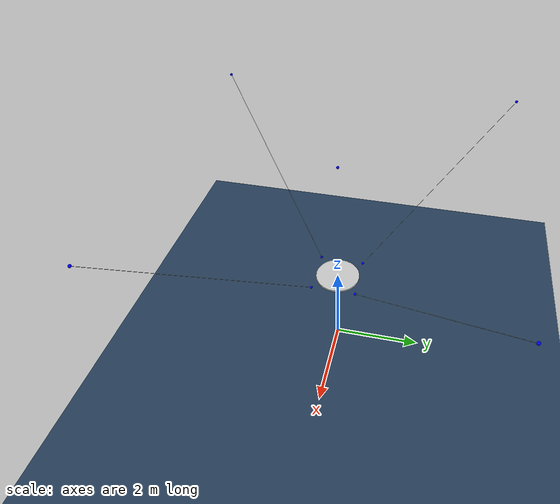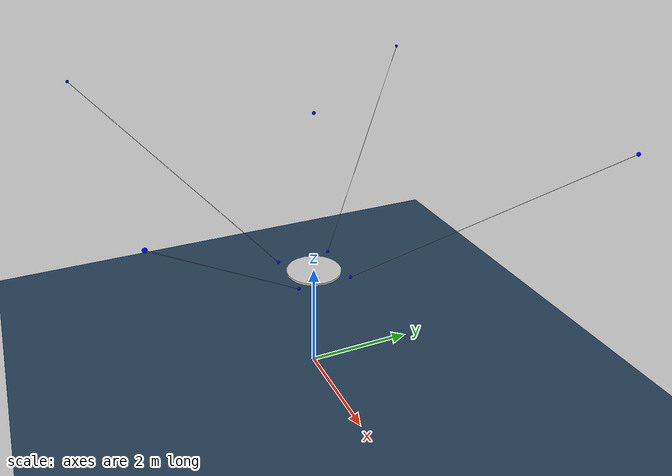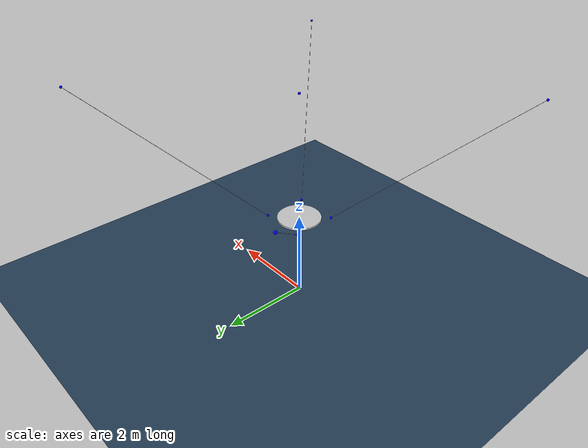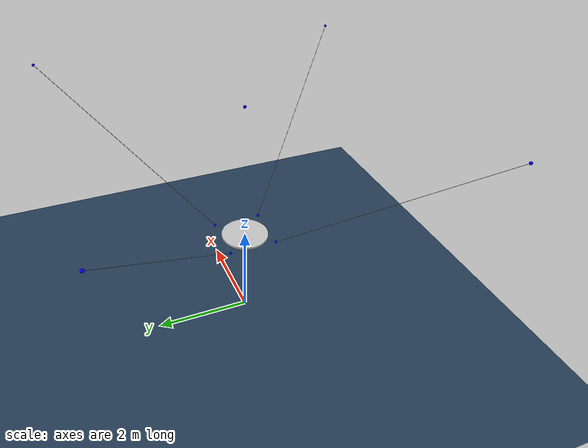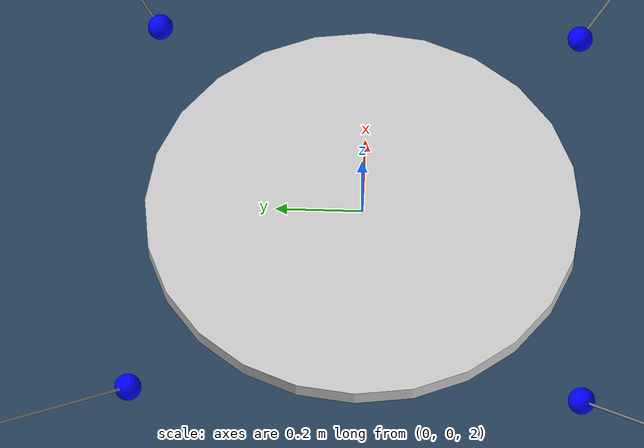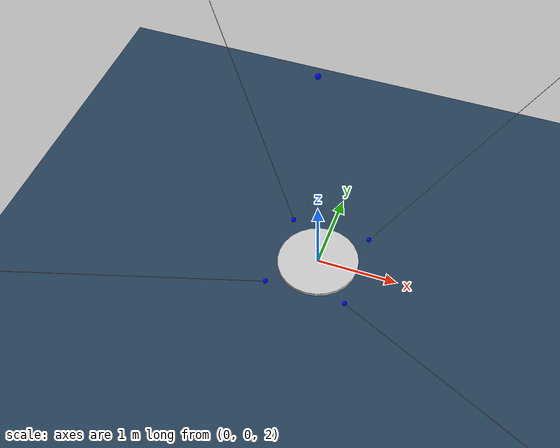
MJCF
<mujoco>
  <option gravity="0 0 -9.81" />

  <visual>
        <headlight diffuse="0.6 0.6 0.6" ambient="0.3 0.3 0.3" specular="0 0 0"/>
        <rgba haze="0.15 0.25 0.35 1"/>
        <global azimuth="-120" elevation="-20"/>
    </visual>

    <asset>
        <texture type="skybox" builtin="gradient" rgb1="0.3 0.5 0.7" rgb2="0 0 0" width="512" height="3072"/>
        <texture type="2d" name="groundplane" builtin="checker" mark="edge" rgb1="0.2 0.3 0.4" rgb2="0.1 0.2 0.3"
        markrgb="0.8 0.8 0.8" width="300" height="300"/>
        <material name="groundplane" texture="groundplane" texuniform="true" texrepeat="5 5" reflectance="0.1"/>
    </asset>

  <worldbody>
    <light pos="0 0 1.5" dir="0 0 -1" directional="true"/>
    <geom name="floor" size="0 0 0.05" type="plane" material="groundplane"/>

    <site name="anchor0" pos="0 0 5" size="0.03" rgba="0 0 1 1" />
    <site name="anchor1" pos="3.5 3.5 5" size="0.03" rgba="0 0 1 1" />
    <site name="anchor2" pos="3.5 -3.5 5" size="0.03" rgba="0 0 1 1" />
    <site name="anchor3" pos="-3.5 3.5 5" size="0.03" rgba="0 0 1 1" />
    <site name="anchor4" pos="-3.5 -3.5 5" size="0.03" rgba="0 0 1 1" />
    <body name="box" pos="0 0 2">
      <freejoint />
      <geom type="cylinder" mass="5" size=".5 .02" rgba="0.8 0.8 0.8 1"/>
      <site name="a1" pos=".5 .5 .02" rgba="0 0 1 1" size="0.03" />
      <site name="a2" pos=".5 -.5 .02" rgba="0 0 1 1" size="0.03" />
      <site name="a3" pos="-.5 .5 .02" rgba="0 0 1 1" size="0.03" />
      <site name="a4" pos="-.5 -.5 .02" rgba="0 0 1 1" size="0.03" />
    </body>
  </worldbody>

  <tendon>
    <spatial name="tendon1" limited="true" range="0 10" damping="100" stiffness="10000" >
      <site site="anchor1" />
      <site site="a1" />
    </spatial>
    <spatial name="tendon2" limited="true" range="0 10" damping="100" stiffness="10000" >
      <site site="anchor2" />
      <site site="a2" />
    </spatial>
    <spatial name="tendon3" limited="true" range="0 10" damping="100" stiffness="10000" >
      <site site="anchor3" />
      <site site="a3" />
    </spatial>
    <spatial name="tendon4" limited="true" range="0 10" damping="100" stiffness="10000" >
      <site site="anchor4" />
      <site site="a4" />
    </spatial>
  </tendon>
  <actuator>
    <position name="tendon1" tendon="tendon1" ctrllimited="true" ctrlrange="-20 20" kp="1000"/>
    <position name="tendon2" tendon="tendon2" ctrllimited="true" ctrlrange="-20 20" kp="1000"/>
    <position name="tendon3" tendon="tendon3" ctrllimited="true" ctrlrange="-20 20" kp="1000"/>
    <position name="tendon4" tendon="tendon4" ctrllimited="true" ctrlrange="-20 20" kp="1000"/>
  </actuator>

  <sensor>
    <tendonlimitfrc tendon="tendon1" />
    <tendonlimitfrc tendon="tendon2" />
    <tendonlimitfrc tendon="tendon3" />
    <tendonlimitfrc tendon="tendon4" />
  </sensor>
</mujoco>
